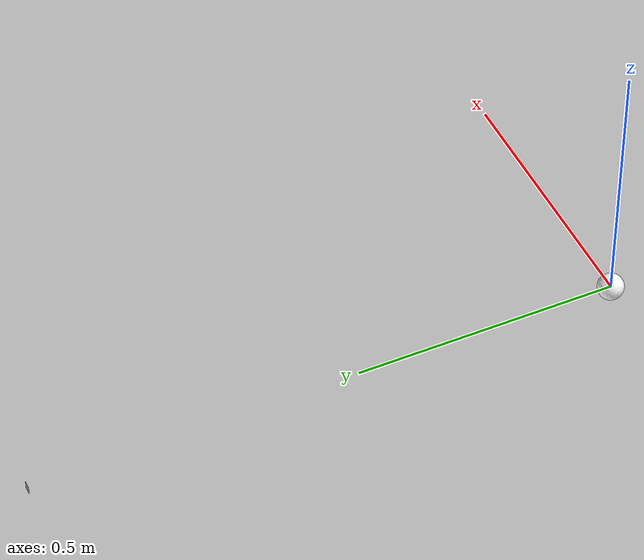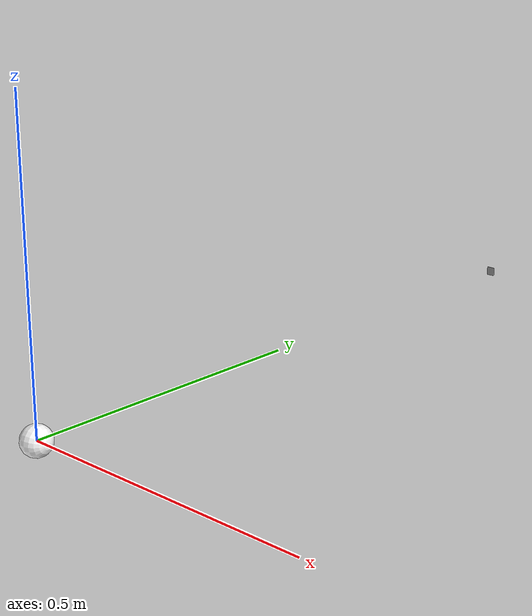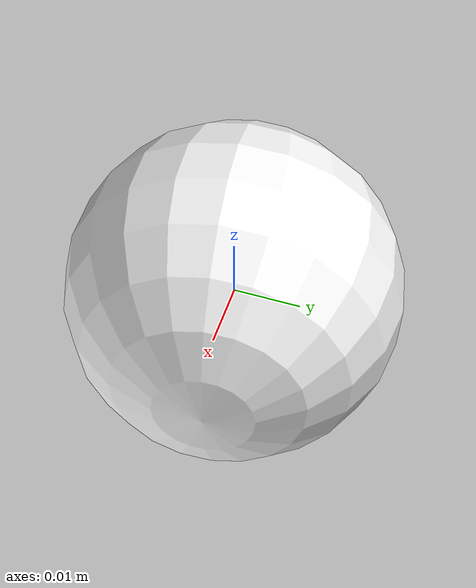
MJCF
<?xml version="1.0"?>
<mujoco>
    <compiler angle="radian"/>
    <option collision="all" timestep="0.002"/>
    <size njmax="1000" nconmax="400"/>
    <default class="main">
        <default class="head">
            <joint type="slide" stiffness="0.0" damping="0.5" armature="0.0" limited="true" range="0 1"/>
        </default>

        <default class="eye">
            <position ctrllimited="true" kp="5"/>
            <joint type="hinge" stiffness="0.0" damping="0.5" armature="0.0" limited="true"/>
        </default>

        <default class="smart-glass-grid">
            <geom type="box" size="0.0030 0.0001 0.0030" rgba="0 0 0 0"/>
        </default>

        <default class="background-grid">
            <geom type="box" size="0.008 0.0001 0.008" rgba="0.5 0.5 0.5 0.8"/>
        </default>
    </default>
    <asset>
        <texture type="skybox" builtin="gradient" rgb1="1 1 1" rgb2="0.6 0.8 1" width="256" height="256"/>
        <texture type="cube" name="blue-eye" file="assets/blue_eye_texture_circle.png" gridsize="3 4" gridlayout=".U..LFRB.D.."/>
        <material name="blue-eye" texture="blue-eye" texuniform="true"/>
        <mesh name="eye" file="assets/basic_eye_2.stl" scale="0.05 0.05 0.05"/>
    </asset>
    <worldbody>
        <light name="scene_directional_light" directional="true" castshadow="false" cutoff="4" exponent="20"
               diffuse="1 1 1" specular="0 0 0" pos=".9 .3 2.5"/>

        <camera name="env" pos="0.35 -0.35 0.15" euler="1.4 0.5 0.12"/>

        <body name="head" pos="0 0 0">
            <body name="eye" pos="0 0 0" quat="0.7071068 0.7071068 0 0">
                <geom name="eye" type="sphere" size="0.025" material="blue-eye" rgba="1 1 1 1" quat="0.6625191 0.0130711 0.7488417 0.0115643"/>
                <camera name="eye" fovy="90"/>
                <joint name="eye-joint-x" class="eye" axis="1 0 0" range="-1.0 1.0"/>
                <joint name="eye-joint-y" class="eye" axis="0 1 0" range="-1.0 1.0"/>
                <site name="rangefinder-site" quat="0 0 1 0"/>
            </body>

            <body name="smart-glass-pane-interline-spacing-100" pos="0 0.10 0">
                <geom name="grid-1" pos="-0.015 0 0.0268" class="smart-glass-grid"/>
                <geom name="grid-2" pos="-0.005 0 0.0268" class="smart-glass-grid"/>
                <geom name="grid-3" pos="0.005 0 0.0268" class="smart-glass-grid"/>
                <geom name="grid-4" pos="0.015 0 0.0268" class="smart-glass-grid"/>

                <geom name="grid-5" pos="-0.015 0 0" class="smart-glass-grid"/>
                <geom name="grid-6" pos="-0.005 0 0" class="smart-glass-grid"/>
                <geom name="grid-7" pos="0.005 0 0" class="smart-glass-grid"/>
                <geom name="grid-8" pos="0.015 0 0" class="smart-glass-grid"/>

                <geom name="grid-9" pos="-0.015 0 -0.0268" class="smart-glass-grid"/>
                <geom name="grid-10" pos="-0.005 0 -0.0268" class="smart-glass-grid"/>
                <geom name="grid-11" pos="0.005 0 -0.0268" class="smart-glass-grid"/>
                <geom name="grid-12" pos="0.015 0 -0.0268" class="smart-glass-grid"/>
            </body>

            <body name="smart-glass-pane-bottom-center" pos="0 0.10 -0.02">
                <geom name="grid-13" pos="-0.015 0 0.0136" class="smart-glass-grid"/>
                <geom name="grid-14" pos="-0.005 0 0.0136" class="smart-glass-grid"/>
                <geom name="grid-15" pos="0.005 0 0.0136" class="smart-glass-grid"/>
                <geom name="grid-16" pos="0.015 0 0.0136" class="smart-glass-grid"/>

                <geom name="grid-17" pos="-0.015 0 0.0068" class="smart-glass-grid"/>
                <geom name="grid-18" pos="-0.005 0 0.0068" class="smart-glass-grid"/>
                <geom name="grid-19" pos="0.005 0 0.0068" class="smart-glass-grid"/>
                <geom name="grid-20" pos="0.015 0 0.0068" class="smart-glass-grid"/>

                <geom name="grid-21" pos="-0.015 0 0" class="smart-glass-grid"/>
                <geom name="grid-22" pos="-0.005 0 0" class="smart-glass-grid"/>
                <geom name="grid-23" pos="0.005 0 0" class="smart-glass-grid"/>
                <geom name="grid-24" pos="0.015 0 0" class="smart-glass-grid"/>
            </body>

            <body name="smart-glass-pane-mid-right" pos="0.025 0.10 0">
                <geom name="grid-25" pos="-0.015 0 0.0136" class="smart-glass-grid"/>
                <geom name="grid-26" pos="-0.005 0 0.0136" class="smart-glass-grid"/>
                <geom name="grid-27" pos="0.005 0 0.0136" class="smart-glass-grid"/>
                <geom name="grid-28" pos="0.015 0 0.0136" class="smart-glass-grid"/>

                <geom name="grid-29" pos="-0.015 0 0.0068" class="smart-glass-grid"/>
                <geom name="grid-30" pos="-0.005 0 0.0068" class="smart-glass-grid"/>
                <geom name="grid-31" pos="0.005 0 0.0068" class="smart-glass-grid"/>
                <geom name="grid-32" pos="0.015 0 0.0068" class="smart-glass-grid"/>

                <geom name="grid-33" pos="-0.015 0 0" class="smart-glass-grid"/>
                <geom name="grid-34" pos="-0.005 0 0" class="smart-glass-grid"/>
                <geom name="grid-35" pos="0.005 0 0" class="smart-glass-grid"/>
                <geom name="grid-36" pos="0.015 0 0" class="smart-glass-grid"/>
            </body>

            <joint name="head-joint-y" class="head" axis="0 1 0" />
        </body>

        <body name="background-pane" pos="0 1.12 0">
            <geom name="grid-bgp" pos="-0 0 0" class="background-grid"/>
        </body>

    </worldbody>
    <actuator>
        <position name="eye-x-motor" joint="eye-joint-x" class="eye" ctrlrange="-1.0 1.0"/>
        <position name="eye-y-motor" joint="eye-joint-y" class="eye" ctrlrange="-1.0 1.0"/>
    </actuator>
    <sensor>
        <rangefinder name="rangefinder" site="rangefinder-site"/>
    </sensor>
</mujoco>
